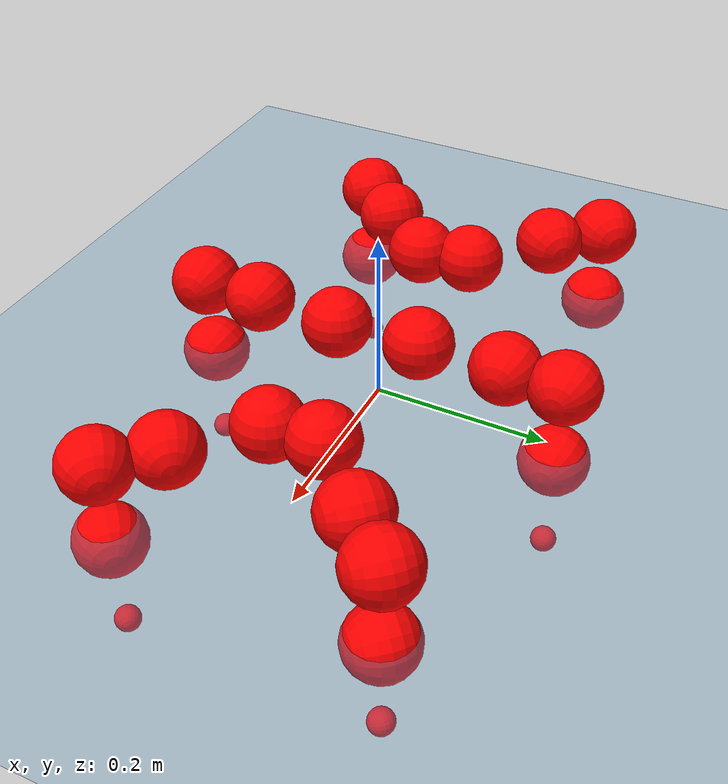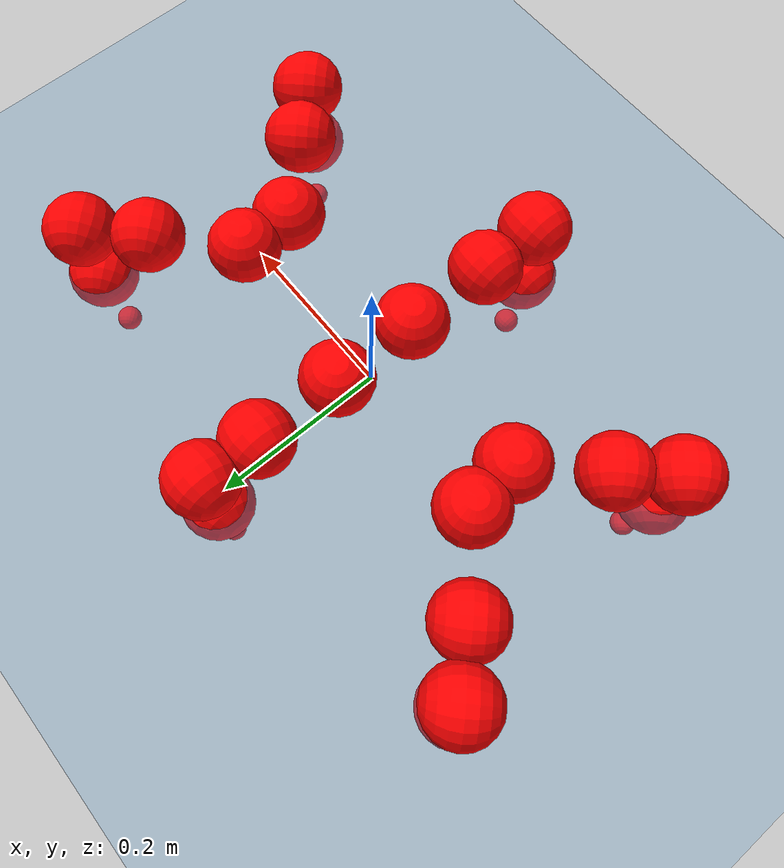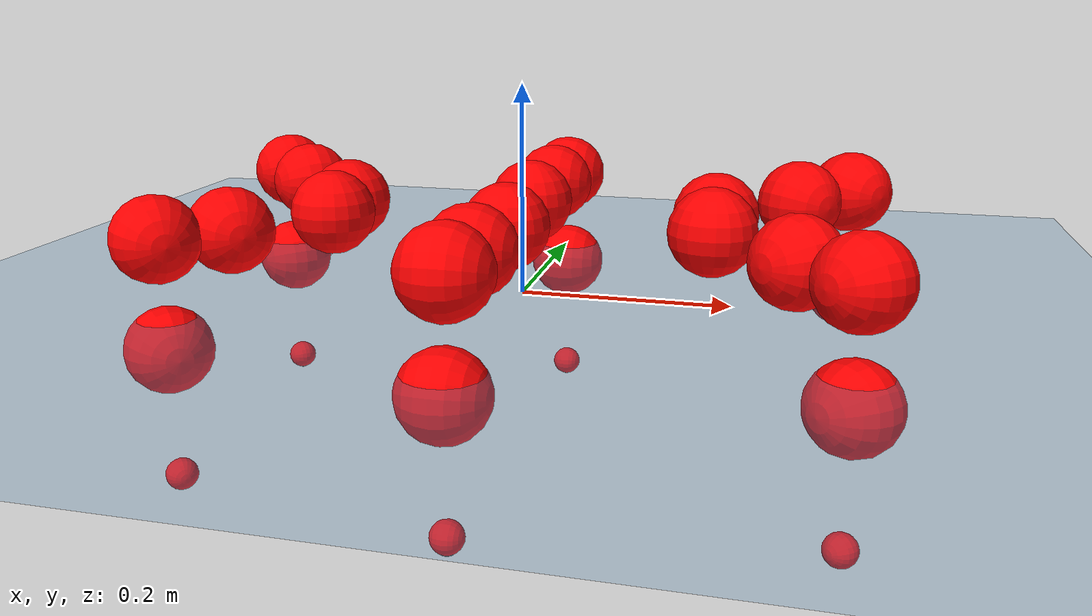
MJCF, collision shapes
<mujoco model="Golem">
  <compiler angle="radian" assetdir="assets" balanceinertia="true" inertiafromgeom="false"/>

  <option timestep="0.005" density="1.2" viscosity="2e-05"/>

  <size nkey="1"/>

  <visual>
    <quality shadowsize="8192"/>
    <map shadowclip="0.5"/>
  </visual>

  <default>
    <default class="/">
      <joint armature="0.01" damping="0.01" frictionloss="0.01"/>
      <geom contype="0" conaffinity="0" group="1" solref="-1000 -80"/>
      <site size="0.01 0.005 0.005" group="5"/>
      <general forcelimited="true" biastype="affine" gainprm="25" biasprm="0 -25 -0.5"/>
      <default class="visual">
        <geom type="mesh" group="2"/>
      </default>
      <default class="collision">
        <geom group="3"/>
      </default>
      <default class="foot">
        <geom size="0.01 0 0" condim="6" group="4" priority="1" solimp="0.015 1 0.01"/>
      </default>
      <default class="reward_collision_sphere">
        <geom group="5" rgba="1 0 0 1"/>
      </default>
    </default>
  </default>

  <asset>
    <texture type="skybox" colorspace="auto" name="//unnamed_texture_0" builtin="gradient" rgb1="0.95 0.95 0.95" rgb2="0.95 0.95 0.95" width="100" height="600"/>
    <texture type="2d" colorspace="auto" name="texplane" builtin="checker" rgb1="0.345 0.575 0.748" rgb2="0.345 0.575 0.748" markrgb="1 1 1" width="512" height="512"/>
    <material name="MatPlane" class="/" texture="texplane" texuniform="true" texrepeat="2 2" specular="0.9"/>
    <mesh name="body" class="/" file="body.stl" scale="0.001 0.001 0.001"/>
    <mesh name="coxa" class="/" file="coxa.stl" scale="0.001 0.001 0.001"/>
    <mesh name="femur" class="/" file="femur.stl" scale="0.001 0.001 0.001"/>
    <mesh name="tibia" class="/" file="tibia.stl" scale="0.001 0.001 0.001"/>
    <mesh name="tarsus" class="/" file="tarsus.stl" scale="0.001 0.001 0.001"/>
  </asset>

  <worldbody>
    <geom name="floor" class="/" size="100 100 0.125" type="plane" group="0" material="MatPlane"/>
    <light name="toplight_shadow" class="/" pos="0 0 5" dir="0.0990148 0.0990148 -0.990148" type="directional" ambient="0.04 0.04 0.04" diffuse="0.55 0.55 0.55" specular="0.12 0.12 0.12"/>
    <light name="toplight_fill" class="/" pos="0 0 5" dir="0.0990148 0.0990148 -0.990148" type="directional" castshadow="false" ambient="0.04 0.04 0.04" diffuse="0.3 0.3 0.3" specular="0.08 0.08 0.08"/>
    <body name="trunk" pos="-0.00273482 -0.000908642 -0.000312497" quat="1 0.000130005 5.26688e-05 0.000124774">
      <inertial pos="0.00321633 -0.0005927 -0.000674536" quat="0.999926 0.0100605 -0.00126771 0.00674296" mass="3.85661" diaginertia="0.0209046 0.00118662 0.0267751"/>
      <joint name="//unnamed_joint_0" type="free"/>
      <geom name="//unnamed_geom_1" class="/" pos="0 0 0.0776351" quat="1 0 0 0" type="mesh" rgba="0.9 0.9 0.9 1" mesh="body"/>
      <site name="imu" class="/" pos="0.146606 0.00323329 0.129469" size="0.0100807"/>
      <camera name="track" class="/" pos="0 -1.30083 0" quat="0.707107 0.707107 0 0" mode="trackcom"/>
      <camera name="ego_camera" class="/" pos="0.150896 0 0.121305" quat="-0.5 -0.5 0.5 0.5"/>
      <body name="coxa_RR" pos="-0.202835 -0.0541925 0.077029" quat="0.382699 1.39222e-05 -5.277e-06 -0.923873">
        <inertial pos="0.000169702 -0.000483971 -0.000175416" quat="0.999992 -0.000872567 0.00330434 0.00219175" mass="0.207752" diaginertia="0.020563 0.00119418 0.027152"/>
        <joint name="coxa_joint_RR" class="/" pos="0 0 0" axis="0.0055378 -0.00231195 -0.999982" stiffness="0.00508749" range="-3.13268 3.08677" armature="0.00864089" damping="0.00336985" frictionloss="0.0099315"/>
        <geom name="//unnamed_geom_2" class="/" type="mesh" rgba="0.2 0.2 0.2 1" mesh="coxa"/>
        <geom name="//unnamed_geom_3" class="reward_collision_sphere" size="0.0403227" pos="-0.0348222 0 0"/>
        <body name="femur_RR" pos="0.0660665 0.00329413 -0.00507918" quat="0.499743 -0.499842 0.500434 0.499982">
          <inertial pos="-0.00130694 0.00252433 -0.00285651" quat="1 0.000196979 6.39698e-05 0.00015163" mass="0.20821" diaginertia="0.0213713 0.00117065 0.0264827"/>
          <joint name="femur_joint_RR" class="/" pos="0 0 0" axis="0.000834986 0.00261219 -0.999996" range="-3.11199 3.11798" armature="0.00881972" damping="0.0163006" frictionloss="0.011337"/>
          <geom name="//unnamed_geom_4" class="/" type="mesh" rgba="0.9 0.9 0.9 1" mesh="femur"/>
          <geom name="//unnamed_geom_5" class="reward_collision_sphere" size="0.0403227"/>
          <body name="tibia_RR" pos="-0.000693347 -0.0679289 0.0027656" quat="0.000249778 0.999999 -0.000440756 -0.00116822">
            <inertial pos="-0.00153746 -0.00244053 0.000174482" quat="0.999934 0.00416281 -0.00920982 0.00543217" mass="0.205436" diaginertia="0.0203656 0.00116821 0.0261556"/>
            <joint name="tibia_joint_RR" class="/" pos="0 0 0" axis="0.00351379 -0.0126365 0.999914" stiffness="0.010583" range="-3.15189 3.08768" armature="0.00899357" damping="0" frictionloss="0.00977382"/>
            <geom name="//unnamed_geom_6" class="/" type="mesh" rgba="0.2 0.2 0.2 1" mesh="tibia"/>
            <geom name="//unnamed_geom_7" class="reward_collision_sphere" size="0.0403227"/>
            <body name="tarsus_RR" pos="0.102946 -0.00197631 -0.00300476" quat="1 0.000492382 0.000442394 0.000165348">
              <inertial pos="0.0706924 0.00142489 -0.00229247" quat="0.502798 0.496344 0.492567 0.508148" mass="0.204964" diaginertia="0.0213513 0.0012103 0.0265263"/>
              <joint name="tarsus_joint_RR" class="/" pos="0 0 0" axis="0.000520612 -0.00358297 0.999993" stiffness="0.0058775" range="-3.14234 3.13516" armature="0.0113869" damping="0.0100357" frictionloss="0.0111551"/>
              <geom name="//unnamed_geom_8" class="/" type="mesh" rgba="0.9 0.9 0.9 1" mesh="tarsus"/>
              <geom name="foot_1" class="foot" size="0.00897475" pos="0.130003 0 0" quat="0 -0.707107 0 0.707107"/>
              <geom name="//unnamed_geom_10" class="reward_collision_sphere" size="0.0403227"/>
              <geom name="//unnamed_geom_11" class="reward_collision_sphere" size="0.015121" pos="0.12478 0 0"/>
              <site name="foot_1" class="foot" pos="0.130003 0 0" quat="0 -0.707107 0 0.707107" size="0.0100807"/>
            </body>
          </body>
        </body>
      </body>
      <body name="coxa_RM" pos="0.000848312 -0.0870558 0.0781068" quat="0.7071 -8.87447e-07 -1.33336e-05 -0.707114">
        <inertial pos="-0.00146751 0.000241298 -0.00229021" quat="1 -0.000413732 -1.75398e-05 3.9339e-05" mass="0.198372" diaginertia="0.0210549 0.00113369 0.0251592"/>
        <joint name="coxa_joint_RM" class="/" pos="0 0 0" axis="0.00204626 -0.000659412 -0.999998" range="-3.13653 3.13468" armature="0.00885607" damping="0.0227452" frictionloss="0.0100378"/>
        <geom name="//unnamed_geom_12" class="/" type="mesh" rgba="0.2 0.2 0.2 1" mesh="coxa"/>
        <geom name="//unnamed_geom_13" class="reward_collision_sphere" size="0.0403227" pos="-0.0348222 0 0"/>
        <body name="femur_RM" pos="0.0656663 -0.00231187 0.00219321" quat="0.500254 -0.49992 0.499492 0.500333">
          <inertial pos="0.00246288 -0.00280945 0.00230058" quat="0.999974 -0.00500392 -0.000519454 0.0052263" mass="0.210792" diaginertia="0.0216836 0.00116118 0.0272086"/>
          <joint name="femur_joint_RM" class="/" pos="0 0 0" axis="-0.000213525 0.00546665 -0.999985" range="-3.12516 3.1368" armature="0.0100538" damping="0.00618078" frictionloss="0.00881583"/>
          <geom name="//unnamed_geom_14" class="/" type="mesh" rgba="0.9 0.9 0.9 1" mesh="femur"/>
          <geom name="//unnamed_geom_15" class="reward_collision_sphere" size="0.0403227"/>
          <body name="tibia_RM" pos="-0.0017337 -0.0720639 0.000608173" quat="8.57681e-05 1 4.22999e-05 3.03359e-06">
            <inertial pos="-0.00261421 -0.000644727 -0.00102725" quat="0.999986 0.00391584 -0.00164128 -0.00311133" mass="0.206188" diaginertia="0.0209398 0.00117249 0.0273388"/>
            <joint name="tibia_joint_RM" class="/" pos="0 0 0" axis="-0.0108722 -0.00815548 0.999908" range="-3.08923 3.15503" armature="0.0114592" damping="0.00752684" frictionloss="0.00958439"/>
            <geom name="//unnamed_geom_16" class="/" type="mesh" rgba="0.2 0.2 0.2 1" mesh="tibia"/>
            <geom name="//unnamed_geom_17" class="reward_collision_sphere" size="0.0403227"/>
            <body name="tarsus_RM" pos="0.101789 -0.000817415 0.00349655" quat="0.999999 -0.000716785 -0.000588302 -0.000767164">
              <inertial pos="0.0722603 0.000347065 0.0027723" quat="0.500381 0.499178 0.499821 0.500618" mass="0.199012" diaginertia="0.0204094 0.00114134 0.0245764"/>
              <joint name="tarsus_joint_RM" class="/" pos="0 0 0" axis="0.00944281 0.0111784 0.999893" range="-3.12523 3.12407" armature="0.0115192" damping="0.013515" frictionloss="0.00995107"/>
              <geom name="//unnamed_geom_18" class="/" type="mesh" rgba="0.9 0.9 0.9 1" mesh="tarsus"/>
              <geom name="foot_2" class="foot" size="0.0110563" pos="0.130003 0 0" quat="0 -0.707107 0 0.707107"/>
              <geom name="//unnamed_geom_20" class="reward_collision_sphere" size="0.0403227"/>
              <geom name="//unnamed_geom_21" class="reward_collision_sphere" size="0.015121" pos="0.12478 0 0"/>
              <site name="foot_2" class="foot" pos="0.130003 0 0" quat="0 -0.707107 0 0.707107" size="0.0100807"/>
            </body>
          </body>
        </body>
      </body>
      <body name="coxa_RF" pos="0.209385 -0.0569558 0.0784539" quat="0.923694 0.0011703 3.22177e-05 -0.38313">
        <inertial pos="-0.00127866 0.00126076 0.0019423" quat="0.999902 0.0132495 -0.00453274 -0.000664876" mass="0.208003" diaginertia="0.0201705 0.00116505 0.0251655"/>
        <joint name="coxa_joint_RF" class="/" pos="0 0 0" axis="0.000902779 -0.00970642 -0.999952" range="-3.1946 3.13892" armature="0.00894532" damping="0.0228223" frictionloss="0.0114571"/>
        <geom name="//unnamed_geom_22" class="/" type="mesh" rgba="0.2 0.2 0.2 1" mesh="coxa"/>
        <geom name="//unnamed_geom_23" class="reward_collision_sphere" size="0.0403227" pos="-0.0348222 0 0"/>
        <body name="femur_RF" pos="0.0691539 0.000404757 -0.00321451" quat="0.500091 -0.500255 0.500281 0.499372">
          <inertial pos="9.37132e-05 -0.00294639 -0.000219419" quat="0.999999 -0.000508706 0.000855466 0.000613048" mass="0.201527" diaginertia="0.0213436 0.00114052 0.0254737"/>
          <joint name="femur_joint_RF" class="/" pos="0 0 0" axis="0.00360992 0.000263275 -0.999993" stiffness="0.00448528" range="-3.08892 3.12392" armature="0.0103897" damping="0" frictionloss="0.0101578"/>
          <geom name="//unnamed_geom_24" class="/" type="mesh" rgba="0.9 0.9 0.9 1" mesh="femur"/>
          <geom name="//unnamed_geom_25" class="reward_collision_sphere" size="0.0403227"/>
          <body name="tibia_RF" pos="-0.000393618 -0.0694326 0.00020277" quat="0.000182009 1 -3.71874e-05 8.6652e-07">
            <inertial pos="-0.000696537 -0.000928214 -7.49145e-05" quat="0.999988 -0.00313954 -0.00375062 -0.00062854" mass="0.196383" diaginertia="0.0198223 0.00112272 0.02538"/>
            <joint name="tibia_joint_RF" class="/" pos="0 0 0" axis="-0.0127204 -0.00670475 0.999897" range="-3.0861 3.12195" armature="0.00974294" damping="0" frictionloss="0.0114875"/>
            <geom name="//unnamed_geom_26" class="/" type="mesh" rgba="0.2 0.2 0.2 1" mesh="tibia"/>
            <geom name="//unnamed_geom_27" class="reward_collision_sphere" size="0.0403227"/>
            <body name="tarsus_RF" pos="0.102648 0.000511892 -0.00113877" quat="0.999999 0.000421072 0.000556539 0.00100499">
              <inertial pos="0.0685051 -0.00284869 0.00109744" quat="0.498872 0.49821 0.50195 0.500958" mass="0.200114" diaginertia="0.0204091 0.00115856 0.0252804"/>
              <joint name="tarsus_joint_RF" class="/" pos="0 0 0" axis="-0.0140645 -0.00269374 0.999897" range="-3.16807 3.15064" armature="0.00990866" damping="0" frictionloss="0.00927501"/>
              <geom name="//unnamed_geom_28" class="/" type="mesh" rgba="0.9 0.9 0.9 1" mesh="tarsus"/>
              <geom name="foot_3" class="foot" size="0.0101198" pos="0.130003 0 0" quat="0 -0.707107 0 0.707107"/>
              <geom name="//unnamed_geom_30" class="reward_collision_sphere" size="0.0403227"/>
              <geom name="//unnamed_geom_31" class="reward_collision_sphere" size="0.015121" pos="0.12478 0 0"/>
              <site name="foot_3" class="foot" pos="0.130003 0 0" quat="0 -0.707107 0 0.707107" size="0.0100807"/>
            </body>
          </body>
        </body>
      </body>
      <body name="coxa_LR" pos="-0.2104 0.0552476 0.07715" quat="0.382489 -0.000367404 -0.000633422 0.92396">
        <inertial pos="0.00274911 0.000138929 0.00109705" quat="0.999997 0.00160208 -0.000185235 -0.0018671" mass="0.200725" diaginertia="0.0213294 0.00120217 0.0263133"/>
        <joint name="coxa_joint_LR" class="/" pos="0 0 0" axis="0.0116137 0.0161582 -0.999802" stiffness="0.0161594" range="-3.12698 3.19342" armature="0.0111786" damping="0.00228547" frictionloss="0.0112659"/>
        <geom name="//unnamed_geom_32" class="/" type="mesh" rgba="0.2 0.2 0.2 1" mesh="coxa"/>
        <geom name="//unnamed_geom_33" class="reward_collision_sphere" size="0.0403227" pos="-0.0348222 0 0"/>
        <body name="femur_LR" pos="0.071645 0.00222986 0.00206997" quat="0.500711 -0.499335 0.500395 0.499557">
          <inertial pos="-0.00154252 -0.000676289 0.000683824" quat="1 0.000195876 -0.000182814 -0.000409394" mass="0.214187" diaginertia="0.0225778 0.00122383 0.0264502"/>
          <joint name="femur_joint_LR" class="/" pos="0 0 0" axis="0.00166574 -0.000782559 0.999998" range="-3.1898 3.09399" armature="0.00962906" damping="0" frictionloss="0.0092207"/>
          <geom name="//unnamed_geom_34" class="/" type="mesh" rgba="0.9 0.9 0.9 1" mesh="femur"/>
          <geom name="//unnamed_geom_35" class="reward_collision_sphere" size="0.0403227"/>
          <body name="tibia_LR" pos="-0.000545302 -0.0728895 -0.00268126" quat="-0.000324904 1 0.00029445 -0.000302622">
            <inertial pos="0.000247149 -0.000695214 0.000791662" quat="0.999901 -0.00508675 -0.00508485 -0.0120664" mass="0.193111" diaginertia="0.0197195 0.001168 0.0253664"/>
            <joint name="tibia_joint_LR" class="/" pos="0 0 0" axis="-0.00490839 0.00187933 -0.999986" stiffness="0.00124979" range="-3.13428 3.11444" armature="0.0100681" damping="0.0124676" frictionloss="0.0113521"/>
            <geom name="//unnamed_geom_36" class="/" type="mesh" rgba="0.2 0.2 0.2 1" mesh="tibia"/>
            <geom name="//unnamed_geom_37" class="reward_collision_sphere" size="0.0403227"/>
            <body name="tarsus_LR" pos="0.10135 -0.000648065 -0.00227381" quat="0.999999 -0.000125971 -0.00106343 -0.000755172">
              <inertial pos="0.0660762 0.00325608 -0.00212156" quat="0.502404 0.501183 0.495787 0.5006" mass="0.198676" diaginertia="0.0209048 0.00120843 0.0267942"/>
              <joint name="tarsus_joint_LR" class="/" pos="0 0 0" axis="-0.00287727 0.00148209 -0.999995" range="-3.18489 3.14568" armature="0.00916619" damping="0.0293945" frictionloss="0.0105906"/>
              <geom name="//unnamed_geom_38" class="/" type="mesh" rgba="0.9 0.9 0.9 1" mesh="tarsus"/>
              <geom name="foot_4" class="foot" size="0.0104062" pos="0.130003 0 0" quat="0.707107 0 -0.707107 0"/>
              <geom name="//unnamed_geom_40" class="reward_collision_sphere" size="0.0403227"/>
              <geom name="//unnamed_geom_41" class="reward_collision_sphere" size="0.015121" pos="0.12478 0 0"/>
              <site name="foot_4" class="foot" pos="0.130003 0 0" quat="0.707107 0 -0.707107 0" size="0.0100807"/>
            </body>
          </body>
        </body>
      </body>
      <body name="coxa_LM" pos="-5.27766e-05 0.0827341 0.081203" quat="0.706807 -0.000287844 0.000243561 0.707407">
        <inertial pos="0.00299077 0.00242839 0.00295537" quat="0.999901 0.00858674 0.0111393 0.000417281" mass="0.202728" diaginertia="0.021794 0.0011367 0.0271401"/>
        <joint name="coxa_joint_LM" class="/" pos="0 0 0" axis="0.00443952 0.000813983 -0.99999" range="-3.08408 3.13695" armature="0.0101876" damping="0.00368256" frictionloss="0.0102728"/>
        <geom name="//unnamed_geom_42" class="/" type="mesh" rgba="0.2 0.2 0.2 1" mesh="coxa"/>
        <geom name="//unnamed_geom_43" class="reward_collision_sphere" size="0.0403227" pos="-0.0348222 0 0"/>
        <body name="femur_LM" pos="0.0663136 1.12049e-06 -3.77124e-05" quat="0.499581 -0.500194 0.500544 0.49968">
          <inertial pos="0.002344 -0.000427025 -0.00254067" quat="0.999993 0.0014924 -0.00265503 0.0021748" mass="0.211765" diaginertia="0.0212943 0.00119227 0.0276269"/>
          <joint name="femur_joint_LM" class="/" pos="0 0 0" axis="0.0109078 0.00034727 0.99994" range="-3.15703 3.12032" armature="0.0111235" damping="0.0153565" frictionloss="0.0113515"/>
          <geom name="//unnamed_geom_44" class="/" type="mesh" rgba="0.9 0.9 0.9 1" mesh="femur"/>
          <geom name="//unnamed_geom_45" class="reward_collision_sphere" size="0.0403227"/>
          <body name="tibia_LM" pos="0.000917396 -0.0666792 -0.00201653" quat="-0.000354314 0.999999 -0.000809935 -0.0006716">
            <inertial pos="0.00274679 0.00223178 -0.00102571" quat="0.999925 -0.00649604 -0.0103877 -0.000311141" mass="0.218947" diaginertia="0.021947 0.00120543 0.0281171"/>
            <joint name="tibia_joint_LM" class="/" pos="0 0 0" axis="-0.00784192 -0.0105283 -0.999914" stiffness="0.00557846" range="-3.12211 3.13822" armature="0.00946668" damping="0.00536539" frictionloss="0.0105428"/>
            <geom name="//unnamed_geom_46" class="/" type="mesh" rgba="0.2 0.2 0.2 1" mesh="tibia"/>
            <geom name="//unnamed_geom_47" class="reward_collision_sphere" size="0.0403227"/>
            <body name="tarsus_LM" pos="0.102355 -0.00181519 0.000207828" quat="1 1.22101e-05 0.000103407 -4.72063e-05">
              <inertial pos="0.069698 0.000959728 0.00193518" quat="0.488014 0.502313 0.50366 0.505817" mass="0.198113" diaginertia="0.0210843 0.00119398 0.026332"/>
              <joint name="tarsus_joint_LM" class="/" pos="0 0 0" axis="-0.00327406 0.00234405 -0.999992" range="-3.18582 3.11558" armature="0.010199" damping="0.019804" frictionloss="0.0102331"/>
              <geom name="//unnamed_geom_48" class="/" type="mesh" rgba="0.9 0.9 0.9 1" mesh="tarsus"/>
              <geom name="foot_5" class="foot" size="0.0102916" pos="0.130003 0 0" quat="0.707107 0 -0.707107 0"/>
              <geom name="//unnamed_geom_50" class="reward_collision_sphere" size="0.0403227"/>
              <geom name="//unnamed_geom_51" class="reward_collision_sphere" size="0.015121" pos="0.12478 0 0"/>
              <site name="foot_5" class="foot" pos="0.130003 0 0" quat="0.707107 0 -0.707107 0" size="0.0100807"/>
            </body>
          </body>
        </body>
      </body>
      <body name="coxa_LF" pos="0.207442 0.0533956 0.0799457" quat="0.923794 -0.000238953 0.000109611 0.382889">
        <inertial pos="-0.000338681 -0.00023025 0.00212394" quat="0.999962 0.00490317 -0.00304247 0.00658728" mass="0.199213" diaginertia="0.0210703 0.00113871 0.025278"/>
        <joint name="coxa_joint_LF" class="/" pos="0 0 0" axis="-0.00947223 0.00297773 -0.999951" range="-3.12424 3.1332" armature="0.0099591" damping="0.0309917" frictionloss="0.0091545"/>
        <geom name="//unnamed_geom_52" class="/" type="mesh" rgba="0.2 0.2 0.2 1" mesh="coxa"/>
        <geom name="//unnamed_geom_53" class="reward_collision_sphere" size="0.0403227" pos="-0.0348222 0 0"/>
        <body name="femur_LF" pos="0.070357 -0.00153001 0.00197373" quat="0.500432 -0.499887 0.500743 0.498936">
          <inertial pos="0.000515179 -0.000647091 0.000908193" quat="0.99992 -0.00407562 0.0012153 0.0118938" mass="0.202768" diaginertia="0.0205198 0.0011417 0.0264276"/>
          <joint name="femur_joint_LF" class="/" pos="0 0 0" axis="0.00204984 -0.0124161 0.999921" range="-3.14358 3.13693" armature="0.0101448" damping="0" frictionloss="0.0107737"/>
          <geom name="//unnamed_geom_54" class="/" type="mesh" rgba="0.9 0.9 0.9 1" mesh="femur"/>
          <geom name="//unnamed_geom_55" class="reward_collision_sphere" size="0.0403227"/>
          <body name="tibia_LF" pos="-0.00233853 -0.0725076 0.00130077" quat="0.000125689 1 8.38877e-05 7.66872e-05">
            <inertial pos="0.000887632 -0.00216877 -0.00147048" quat="0.999996 0.00200953 0.00197484 -0.000927426" mass="0.206378" diaginertia="0.0221533 0.00115767 0.0262021"/>
            <joint name="tibia_joint_LF" class="/" pos="0 0 0" axis="0.000701784 0.000632484 -1" range="-3.15216 3.19334" armature="0.0101139" damping="0.00672664" frictionloss="0.0100037"/>
            <geom name="//unnamed_geom_56" class="/" type="mesh" rgba="0.2 0.2 0.2 1" mesh="tibia"/>
            <geom name="//unnamed_geom_57" class="reward_collision_sphere" size="0.0403227"/>
            <body name="tarsus_LF" pos="0.101828 0.00239486 0.00104907" quat="0.999999 -0.000335591 -0.000382724 0.0013361">
              <inertial pos="0.0696277 -0.0015591 -0.000830005" quat="0.500167 0.499953 0.499805 0.500075" mass="0.192192" diaginertia="0.019771 0.00109211 0.0255932"/>
              <joint name="tarsus_joint_LF" class="/" pos="0 0 0" axis="-0.00177591 0.00754752 -0.99997" range="-3.1489 3.10182" armature="0.0107707" damping="0.0303192" frictionloss="0.00991798"/>
              <geom name="//unnamed_geom_58" class="/" type="mesh" rgba="0.9 0.9 0.9 1" mesh="tarsus"/>
              <geom name="foot_6" class="foot" size="0.0108839" pos="0.130003 0 0" quat="0.707107 0 -0.707107 0"/>
              <geom name="//unnamed_geom_60" class="reward_collision_sphere" size="0.0403227"/>
              <geom name="//unnamed_geom_61" class="reward_collision_sphere" size="0.015121" pos="0.12478 0 0"/>
              <site name="foot_6" class="foot" pos="0.130003 0 0" quat="0.707107 0 -0.707107 0" size="0.0100807"/>
            </body>
          </body>
        </body>
      </body>
    </body>
  </worldbody>

  <contact>
    <pair class="/" geom1="floor" geom2="foot_1" name="//unnamed_contact_0"/>
    <pair class="/" geom1="floor" geom2="foot_2" name="//unnamed_contact_1"/>
    <pair class="/" geom1="floor" geom2="foot_3" name="//unnamed_contact_2"/>
    <pair class="/" geom1="floor" geom2="foot_4" name="//unnamed_contact_3"/>
    <pair class="/" geom1="floor" geom2="foot_5" name="//unnamed_contact_4"/>
    <pair class="/" geom1="floor" geom2="foot_6" name="//unnamed_contact_5"/>
  </contact>

  <actuator>
    <general name="coxa_joint_RR" class="/" joint="coxa_joint_RR" forcerange="-8.10996 8.10996" gainprm="24.1888" biasprm="0 -24.1888 -0.526939"/>
    <general name="femur_joint_RR" class="/" joint="femur_joint_RR" forcerange="-8.00268 8.00268" gainprm="24.1888" biasprm="0 -24.1888 -0.526939"/>
    <general name="tibia_joint_RR" class="/" joint="tibia_joint_RR" forcerange="-6.75893 6.75893" gainprm="24.1888" biasprm="0 -24.1888 -0.526939"/>
    <general name="tarsus_joint_RR" class="/" joint="tarsus_joint_RR" forcerange="-6.85107 6.85107" gainprm="24.1888" biasprm="0 -24.1888 -0.526939"/>
    <general name="coxa_joint_RM" class="/" joint="coxa_joint_RM" forcerange="-7.11746 7.11746" gainprm="24.1888" biasprm="0 -24.1888 -0.526939"/>
    <general name="femur_joint_RM" class="/" joint="femur_joint_RM" forcerange="-7.52443 7.52443" gainprm="24.1888" biasprm="0 -24.1888 -0.526939"/>
    <general name="tibia_joint_RM" class="/" joint="tibia_joint_RM" forcerange="-7.47216 7.47216" gainprm="24.1888" biasprm="0 -24.1888 -0.526939"/>
    <general name="tarsus_joint_RM" class="/" joint="tarsus_joint_RM" forcerange="-7.63751 7.63751" gainprm="24.1888" biasprm="0 -24.1888 -0.526939"/>
    <general name="coxa_joint_RF" class="/" joint="coxa_joint_RF" forcerange="-7.18578 7.18578" gainprm="24.1888" biasprm="0 -24.1888 -0.526939"/>
    <general name="femur_joint_RF" class="/" joint="femur_joint_RF" forcerange="-7.21693 7.21693" gainprm="24.1888" biasprm="0 -24.1888 -0.526939"/>
    <general name="tibia_joint_RF" class="/" joint="tibia_joint_RF" forcerange="-7.54527 7.54527" gainprm="24.1888" biasprm="0 -24.1888 -0.526939"/>
    <general name="tarsus_joint_RF" class="/" joint="tarsus_joint_RF" forcerange="-7.67972 7.67972" gainprm="24.1888" biasprm="0 -24.1888 -0.526939"/>
    <general name="coxa_joint_LR" class="/" joint="coxa_joint_LR" forcerange="-7.45727 7.45727" gainprm="24.1888" biasprm="0 -24.1888 -0.526939"/>
    <general name="femur_joint_LR" class="/" joint="femur_joint_LR" forcerange="-7.21598 7.21598" gainprm="24.1888" biasprm="0 -24.1888 -0.526939"/>
    <general name="tibia_joint_LR" class="/" joint="tibia_joint_LR" forcerange="-7.29931 7.29931" gainprm="24.1888" biasprm="0 -24.1888 -0.526939"/>
    <general name="tarsus_joint_LR" class="/" joint="tarsus_joint_LR" forcerange="-7.5449 7.5449" gainprm="24.1888" biasprm="0 -24.1888 -0.526939"/>
    <general name="coxa_joint_LM" class="/" joint="coxa_joint_LM" forcerange="-7.08409 7.08409" gainprm="24.1888" biasprm="0 -24.1888 -0.526939"/>
    <general name="femur_joint_LM" class="/" joint="femur_joint_LM" forcerange="-7.47394 7.47394" gainprm="24.1888" biasprm="0 -24.1888 -0.526939"/>
    <general name="tibia_joint_LM" class="/" joint="tibia_joint_LM" forcerange="-7.3292 7.3292" gainprm="24.1888" biasprm="0 -24.1888 -0.526939"/>
    <general name="tarsus_joint_LM" class="/" joint="tarsus_joint_LM" forcerange="-6.65113 6.65113" gainprm="24.1888" biasprm="0 -24.1888 -0.526939"/>
    <general name="coxa_joint_LF" class="/" joint="coxa_joint_LF" forcerange="-7.22063 7.22063" gainprm="24.1888" biasprm="0 -24.1888 -0.526939"/>
    <general name="femur_joint_LF" class="/" joint="femur_joint_LF" forcerange="-7.72558 7.72558" gainprm="24.1888" biasprm="0 -24.1888 -0.526939"/>
    <general name="tibia_joint_LF" class="/" joint="tibia_joint_LF" forcerange="-7.83568 7.83568" gainprm="24.1888" biasprm="0 -24.1888 -0.526939"/>
    <general name="tarsus_joint_LF" class="/" joint="tarsus_joint_LF" forcerange="-7.21121 7.21121" gainprm="24.1888" biasprm="0 -24.1888 -0.526939"/>
  </actuator>

  <sensor>
    <gyro site="imu" name="imu_angular_velocity"/>
    <velocimeter site="imu" name="imu_linear_velocity"/>
    <framelinvel objtype="site" objname="foot_1" name="foot_1_global_linear_velocity"/>
    <framelinvel objtype="site" objname="foot_2" name="foot_2_global_linear_velocity"/>
    <framelinvel objtype="site" objname="foot_3" name="foot_3_global_linear_velocity"/>
    <framelinvel objtype="site" objname="foot_4" name="foot_4_global_linear_velocity"/>
    <framelinvel objtype="site" objname="foot_5" name="foot_5_global_linear_velocity"/>
    <framelinvel objtype="site" objname="foot_6" name="foot_6_global_linear_velocity"/>
  </sensor>

  <keyframe>
    <key name="home" qpos="0 0 0.1457 1 0 0 0 0 0 0 0 0 0 0 0 0 0 0 0 0 0 0 0 0 0 0 0 0 0 0 0"/>
  </keyframe>
</mujoco>
